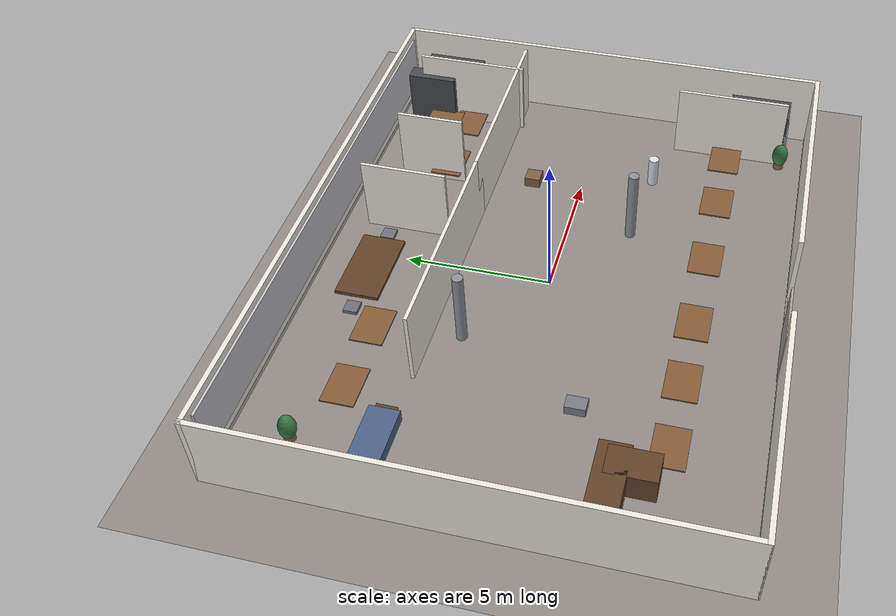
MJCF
<!-- Open-plan office ~20×16 m. -->
<mujoco>
  <default>
    <geom friction="1.0 0.005 0.0001" condim="3"/>
  </default>

  <asset>
    <texture type="2d" name="carpet_tex" builtin="checker" mark="none"
      rgb1="0.58 0.56 0.54" rgb2="0.54 0.52 0.50" width="256" height="256"/>
    <material name="carpet" texture="carpet_tex" texuniform="true" texrepeat="14 12" reflectance="0.08"/>
    <material name="wall" rgba="0.93 0.91 0.87 1" reflectance="0.04"/>
    <material name="baseboard" rgba="0.72 0.70 0.66 1"/>
    <material name="window_glass" rgba="0.72 0.82 0.92 0.35" reflectance="0.25"/>
    <material name="window_frame" rgba="0.78 0.78 0.80 1"/>
    <material name="door_frame" rgba="0.65 0.63 0.60 1"/>
    <material name="oak" rgba="0.52 0.36 0.22 1" reflectance="0.12"/>
    <material name="walnut" rgba="0.38 0.26 0.16 1" reflectance="0.10"/>
    <material name="metal_dark" rgba="0.28 0.29 0.31 1" reflectance="0.35"/>
    <material name="metal_light" rgba="0.55 0.57 0.60 1" reflectance="0.40"/>
    <material name="fabric_gray" rgba="0.42 0.44 0.48 1" reflectance="0.06"/>
    <material name="fabric_blue" rgba="0.30 0.38 0.52 1" reflectance="0.06"/>
    <material name="partition_low" rgba="0.78 0.80 0.82 1" reflectance="0.08"/>
    <material name="partition_glass" rgba="0.75 0.82 0.88 0.25" reflectance="0.30"/>
    <material name="plant" rgba="0.22 0.48 0.28 1"/>
    <material name="plant_pot" rgba="0.55 0.42 0.32 1"/>
    <material name="screen" rgba="0.08 0.10 0.12 1" reflectance="0.6"/>
  </asset>

  <worldbody>
    <light pos="0 0 2.6" dir="0 0 -1" directional="false" diffuse="0.75 0.75 0.72" castshadow="false"/>
    <light pos="-5 3 2.6" dir="0 0 -1" directional="false" diffuse="0.65 0.65 0.62" castshadow="false"/>
    <light pos="5 -3 2.6" dir="0 0 -1" directional="false" diffuse="0.65 0.65 0.62" castshadow="false"/>
    <light pos="0 0 4" dir="0.1 0.05 -1" directional="true" diffuse="0.35 0.35 0.38"/>

    <geom name="office_floor" type="plane" size="12 10 0.1" material="carpet"/>

    <!-- Perimeter -->
    <geom name="wall_south_w" type="box" pos="-6 -7.92 1.35" size="4 0.08 1.35" material="wall"/>
    <geom name="wall_south_e" type="box" pos="5.5 -7.92 1.35" size="4.5 0.08 1.35" material="wall"/>
    <geom name="door_frame_s" type="box" pos="-1.5 -7.85 1.05" size="1.05 0.04 1.05" material="door_frame" contype="0" conaffinity="0"/>
    <geom name="wall_north" type="box" pos="0 7.92 1.35" size="10 0.08 1.35" material="wall"/>
    <geom name="wall_west" type="box" pos="-9.92 0 1.35" size="0.08 8 1.35" material="wall"/>
    <geom name="wall_east" type="box" pos="9.92 0 1.35" size="0.08 8 1.35" material="wall"/>
    <geom name="base_s" type="box" pos="0 -7.85 0.08" size="9.8 0.02 0.08" material="baseboard" contype="0" conaffinity="0"/>
    <geom name="base_n" type="box" pos="0 7.85 0.08" size="9.8 0.02 0.08" material="baseboard" contype="0" conaffinity="0"/>

    <geom name="win_n_1" type="box" pos="-5 7.84 1.5" size="2.2 0.03 0.9" material="window_glass" contype="0" conaffinity="0"/>
    <geom name="win_n_2" type="box" pos="0 7.84 1.5" size="2.5 0.03 0.9" material="window_glass" contype="0" conaffinity="0"/>
    <geom name="win_n_3" type="box" pos="5 7.84 1.5" size="2.2 0.03 0.9" material="window_glass" contype="0" conaffinity="0"/>
    <geom name="win_n_frame" type="box" pos="0 7.80 1.5" size="9.5 0.04 0.95" material="window_frame" contype="0" conaffinity="0"/>

    <!-- Meeting room (north, y>3) -->
    <geom name="meet_wall_s" type="box" pos="-1 3.2 1.35" size="4.0 0.06 1.35" material="wall"/>
    <geom name="meet_wall_e" type="box" pos="1.5 5.5 1.35" size="0.06 1.5 1.35" material="wall"/>
    <geom name="meet_door" type="box" pos="-0.2 3.2 1.0" size="1.0 0.04 1.0" material="partition_glass" contype="0" conaffinity="0"/>
    <body name="meeting_room" pos="-1 6.0 0">
      <geom name="meet_table" type="box" pos="0 0 0.38" size="1.4 0.75 0.06" material="walnut"/>
      <geom name="meet_chair_1_seat" type="box" pos="-1.8 0 0.24" size="0.24 0.24 0.06" material="fabric_gray"/>
      <geom name="meet_chair_2_seat" type="box" pos="1.8 0 0.24" size="0.24 0.24 0.06" material="fabric_gray"/>
      <geom name="meet_whiteboard" type="box" pos="0 2.0 1.0" size="1.2 0.03 0.7" rgba="0.95 0.96 0.94 1" contype="0" conaffinity="0"/>
    </body>

    <!-- Manager office (north-east) -->
    <geom name="mgr_wall_s" type="box" pos="6 3.2 1.35" size="3.5 0.06 1.35" material="wall"/>
    <geom name="mgr_wall_w" type="box" pos="4.5 5.5 1.35" size="0.06 1.2 1.35" material="wall"/>
    <body name="mgr_office" pos="7 6.0 0">
      <geom name="mgr_desk_top" type="box" pos="0 0 0.38" size="1.0 0.65 0.03" material="oak"/>
      <geom name="mgr_bookcase" type="box" pos="1.2 0.6 0.95" size="0.30 0.9 0.95" material="metal_dark"/>
    </body>

    <!-- South workstations -->
    <body name="ws_row_s" pos="0 -5.0 0">
      <geom name="desk_1_top" type="box" pos="-6 0 0.36" size="0.75 0.55 0.025" material="oak"/>
      <geom name="desk_2_top" type="box" pos="-3.5 0 0.36" size="0.75 0.55 0.025" material="oak"/>
      <geom name="desk_3_top" type="box" pos="-1 0 0.36" size="0.75 0.55 0.025" material="oak"/>
      <geom name="desk_4_top" type="box" pos="2 0 0.36" size="0.75 0.55 0.025" material="oak"/>
      <geom name="desk_5_top" type="box" pos="5 0 0.36" size="0.75 0.55 0.025" material="oak"/>
      <geom name="desk_6_top" type="box" pos="7.5 0 0.36" size="0.75 0.55 0.025" material="oak"/>
    </body>

    <!-- North workstations (y > 2.2) -->
    <body name="ws_row_n" pos="0 5.0 0">
      <geom name="desk_7_top" type="box" pos="-6 0 0.36" size="0.75 0.55 0.025" material="oak"/>
      <geom name="desk_8_top" type="box" pos="-3.5 0 0.36" size="0.75 0.55 0.025" material="oak"/>
      <geom name="desk_9_top" type="box" pos="5 0 0.36" size="0.75 0.55 0.025" material="oak"/>
      <geom name="desk_10_top" type="box" pos="7.5 0 0.36" size="0.75 0.55 0.025" material="oak"/>
    </body>

    <!-- West lobby -->
    <body name="reception" pos="-8 -3.5 0">
      <geom name="recep_main" type="box" pos="0 0 0.48" size="1.4 0.5 0.48" material="walnut"/>
      <geom name="recep_return" type="box" pos="0.8 -0.6 0.48" size="0.5 0.8 0.48" material="walnut"/>
    </body>
    <body name="lounge" pos="-8 3.5 0">
      <geom name="sofa_base" type="box" pos="0 0 0.22" size="1.4 0.5 0.22" material="fabric_blue"/>
      <geom name="coffee_table_top" type="box" pos="1.1 0 0.28" size="0.5 0.35 0.025" material="walnut" contype="0" conaffinity="0"/>
    </body>

    <!-- East storage -->
    <geom name="storage_wall_n" type="box" pos="8.2 5.0 1.35" size="0.06 2.0 1.35" material="wall"/>
    <geom name="storage_wall_s" type="box" pos="8.2 -5.0 1.35" size="0.06 2.0 1.35" material="wall"/>
    <body name="storage" pos="9.0 0 0">
      <geom name="shelf_a_frame" type="box" pos="0 6 0.95" size="0.55 1.1 0.95" material="metal_dark"/>
      <geom name="shelf_b_frame" type="box" pos="0 -6 0.95" size="0.55 1.1 0.95" material="metal_dark"/>
      <geom name="copier_body" type="box" pos="0 -6.5 0.55" size="0.55 0.65 0.55" material="metal_light"/>
    </body>

    <!-- Columns -->
    <geom name="column_1" type="cylinder" pos="-3 2.2 1.35" size="0.18 1.35" material="metal_light"/>
    <geom name="column_2" type="cylinder" pos="3 -2.2 1.35" size="0.18 1.35" material="metal_light"/>

    <body name="plant_a" pos="-8 6 0">
      <geom name="plant_a_pot" type="cylinder" size="0.18 0.22" material="plant_pot"/>
      <geom name="plant_a_leaf" type="ellipsoid" pos="0 0 0.55" size="0.28 0.28 0.45" material="plant" contype="0" conaffinity="0"/>
    </body>
    <body name="plant_b" pos="8 -7 0">
      <geom name="plant_b_pot" type="cylinder" size="0.18 0.22" material="plant_pot"/>
      <geom name="plant_b_leaf" type="ellipsoid" pos="0 0 0.55" size="0.28 0.28 0.45" material="plant" contype="0" conaffinity="0"/>
    </body>

    <!-- Clutter -->
    <geom name="box_delivery" type="box" pos="5 1.8 0.18" size="0.28 0.28 0.18" rgba="0.50 0.38 0.26 1"/>
    <geom name="box_archive" type="box" pos="-5 -2.0 0.16" size="0.24 0.34 0.16" rgba="0.48 0.48 0.52 1"/>
    <geom name="water_cooler" type="cylinder" pos="6 -2.5 0.55" size="0.18 0.55" rgba="0.85 0.88 0.92 1"/>
  </worldbody>
</mujoco>
